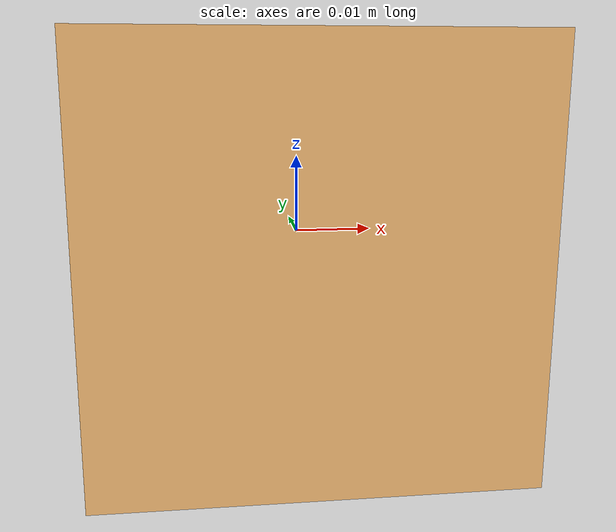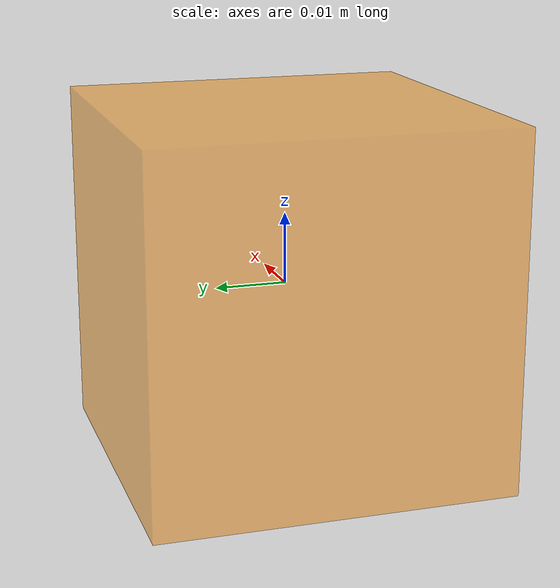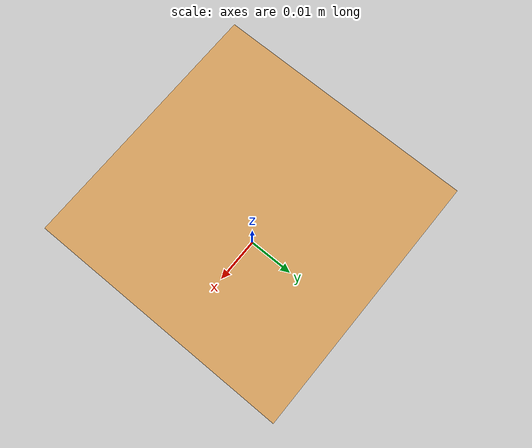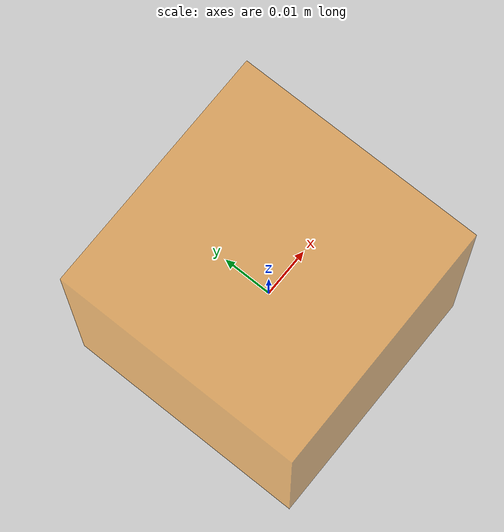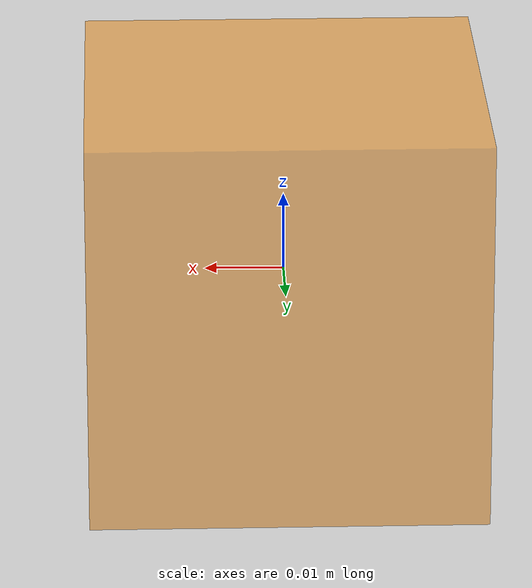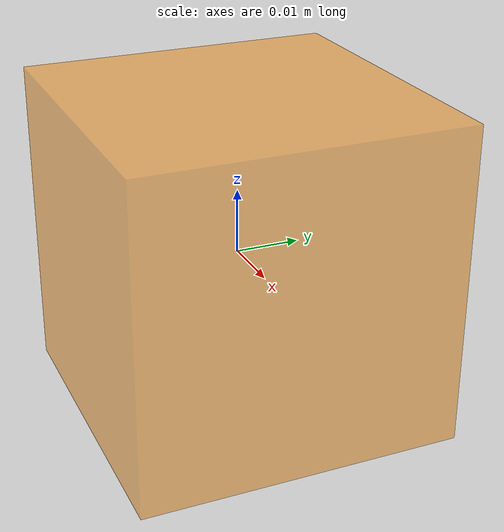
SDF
<sdf version="1.7">
    <model name="box">
        <pose>0 0 0.0 0 0 0</pose>
        <link name="box_link">
            <inertial>
            !     <inertia>
		    ! <ixx>0.000128</ixx>
		    ! <iyy>0.000128</iyy>
		    ! <izz>0.000128</izz>
            !     </inertia>
                <mass>0.502</mass>
            </inertial>

            <!-- Box Visual -->
            <visual name="visual_box">
                <geometry>
                    <box>
                        <size>0.05 0.05 0.05</size>
                    </box>
                </geometry>
                <material>
                    <diffuse>1.0 0.55 0.0 0.5</diffuse>
                </material>
            </visual>

            <!-- Four Corner Spheres -->
            <collision name="collision_sphere_1">
                <pose>-0.025 -0.025 -0.025 0 0 0</pose>
                <geometry>
                    <sphere>
                        <radius>0.001</radius>
                    </sphere>
                </geometry>
                <drake:proximity_properties>
                    <drake:mu_dynamic>0.4</drake:mu_dynamic>
                    <drake:hunt_crossley_dissipation>15.25</drake:hunt_crossley_dissipation>
                </drake:proximity_properties>
            </collision>

            <collision name="collision_sphere_2">
                <pose>0.025 -0.025 -0.025 0 0 0</pose>
                <geometry>
                    <sphere>
                        <radius>0.001</radius>
                    </sphere>
                </geometry>
                <drake:proximity_properties>
                    <drake:mu_dynamic>0.4</drake:mu_dynamic>
                    <drake:hunt_crossley_dissipation>15.25</drake:hunt_crossley_dissipation>
                </drake:proximity_properties>
            </collision>

            <collision name="collision_sphere_3">
                <pose>-0.025 0.025 -0.025 0 0 0</pose>
                <geometry>
                    <sphere>
                        <radius>0.001</radius>
                    </sphere>
                </geometry>
                <drake:proximity_properties>
                    <drake:mu_dynamic>0.4</drake:mu_dynamic>
                    <drake:hunt_crossley_dissipation>15.25</drake:hunt_crossley_dissipation>
                </drake:proximity_properties>
            </collision>

            <collision name="collision_sphere_4">
                <pose>0.025 0.025 -0.025 0 0 0</pose>
                <geometry>
                    <sphere>
                        <radius>0.001</radius>
                    </sphere>
                </geometry>
                <drake:proximity_properties>
                    <drake:mu_dynamic>0.4</drake:mu_dynamic>
                    <drake:hunt_crossley_dissipation>15.25</drake:hunt_crossley_dissipation>
                </drake:proximity_properties>
            </collision>
            <!-- Four Top Corner Spheres -->
		<collision name="collision_sphere_5">
		    <pose>-0.025 -0.025 0.025 0 0 0</pose>
		    <geometry>
			<sphere>
			    <radius>0.001</radius>
			</sphere>
		    </geometry>
	        <drake:proximity_properties>
	            <drake:mu_dynamic>0.4</drake:mu_dynamic>
	            <drake:hunt_crossley_dissipation>15.25</drake:hunt_crossley_dissipation>
	        </drake:proximity_properties>
	    </collision>

		<collision name="collision_sphere_6">
		    <pose>0.025 -0.025 0.025 0 0 0</pose>
		    <geometry>
			<sphere>
			    <radius>0.001</radius>
			</sphere>
		    </geometry>
                <drake:proximity_properties>
                    <drake:mu_dynamic>0.4</drake:mu_dynamic>
                    <drake:hunt_crossley_dissipation>15.25</drake:hunt_crossley_dissipation>
                </drake:proximity_properties>
            </collision>

		<collision name="collision_sphere_7">
		    <pose>-0.025 0.025 0.025 0 0 0</pose>
		    <geometry>
			<sphere>
			    <radius>0.001</radius>
			</sphere>
		    </geometry>
                <drake:proximity_properties>
                    <drake:mu_dynamic>0.4</drake:mu_dynamic>
                    <drake:hunt_crossley_dissipation>15.25</drake:hunt_crossley_dissipation>
                </drake:proximity_properties>
            </collision>

		<collision name="collision_sphere_8">
		    <pose>0.025 0.025 0.025 0 0 0</pose>
		    <geometry>
			<sphere>
			    <radius>0.001</radius>
			</sphere>
		    </geometry>
                <drake:proximity_properties>
                    <drake:mu_dynamic>0.4</drake:mu_dynamic>
                    <drake:hunt_crossley_dissipation>15.25</drake:hunt_crossley_dissipation>
                </drake:proximity_properties>
            </collision>
        </link>
    </model>
</sdf>

            <!-- Box Collision -->
            <collision name="collision_box">
                <geometry>
                    <box>
                        <size>0.05 0.05 0.05</size>
                    </box>
                </geometry>
                <drake:proximity_properties>
                    <drake:compliant_hydroelastic/>
                    <drake:hydroelastic_modulus>1e7</drake:hydroelastic_modulus>
                    <drake:mu_dynamic>0.4</drake:mu_dynamic>
                    <drake:hunt_crossley_dissipation>15.25</drake:hunt_crossley_dissipation>
                    <drake:mesh_resolution_hint>0.01</drake:mesh_resolution_hint>
                </drake:proximity_properties>
            </collision>

<drake:mesh_resolution_hint>5.05</drake:mesh_resolution_hint>
